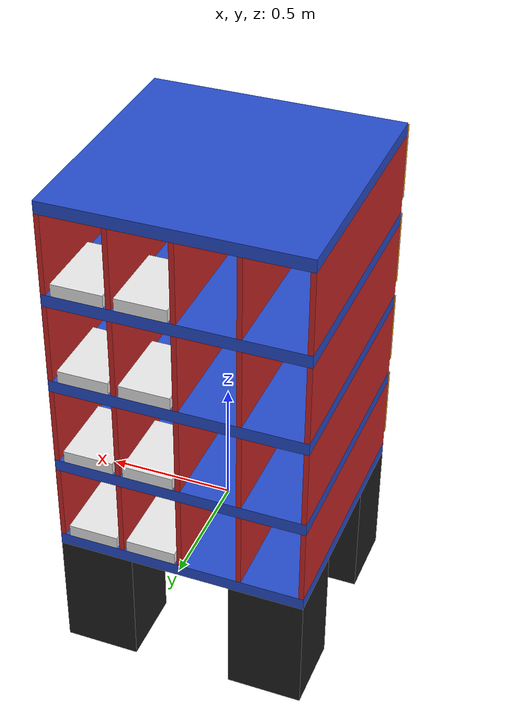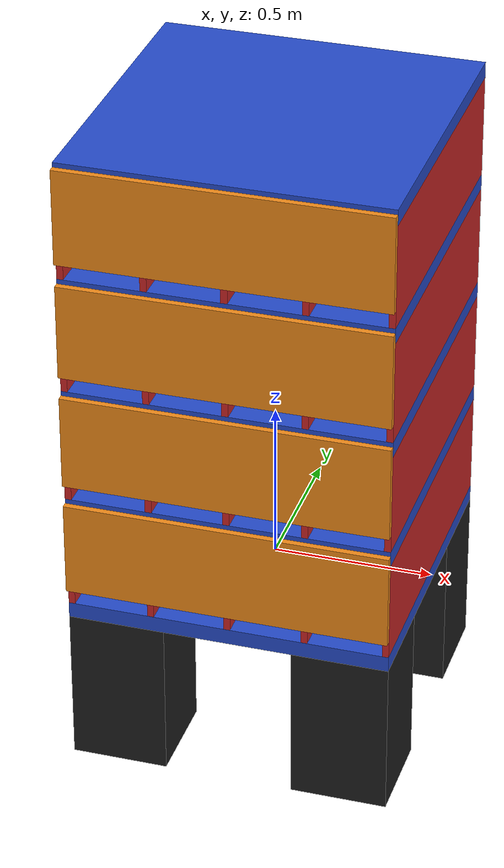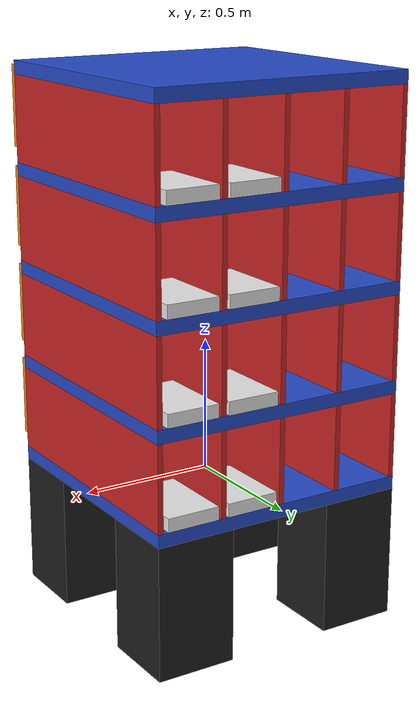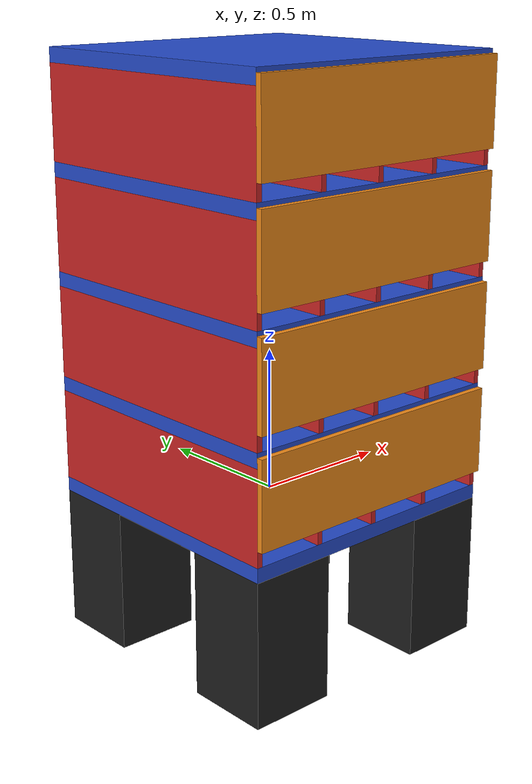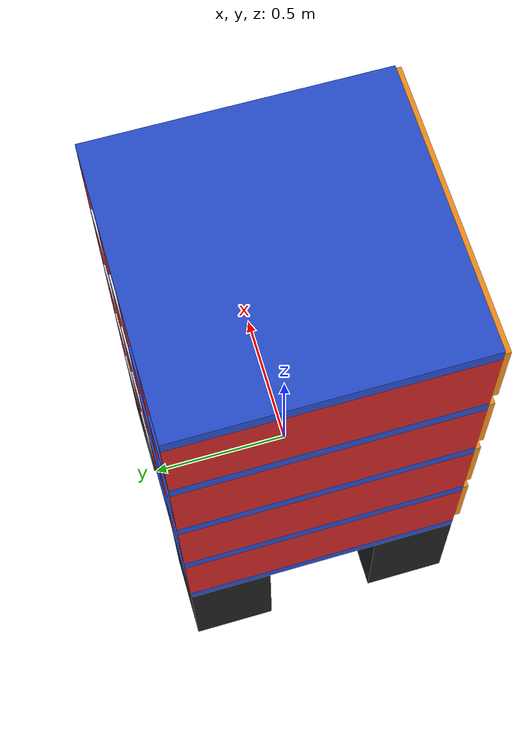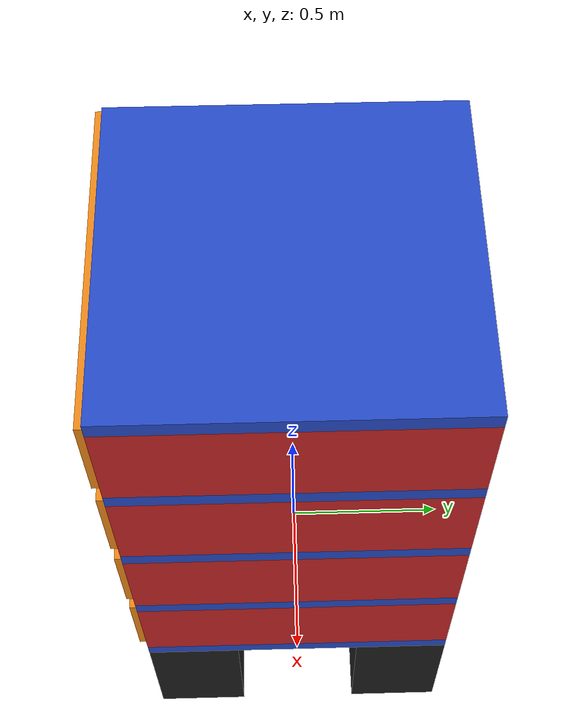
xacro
<?xml version="1.0"?>
<robot name="shelf" xmlns:xacro="http://ros.org/wiki/xacro">

	<xacro:include filename="$(find project)/urdf/common_properties.xacro"/>

	<xacro:macro name="visual1" params="length radius color">
                <visual>
                        <geometry>
                                <cylinder length="${length}" radius="${radius}"/>
                        </geometry>
                        <material name="${color}"/>
                </visual>
                <collision>
                        <geometry>
                                <cylinder length="${length}" radius="${radius}"/>
                        </geometry>
                </collision>
        </xacro:macro>

        <xacro:macro name="visual2" params="length width height color">
                <visual>
                        <geometry>
                                <box size="${length} ${width} ${height}"/>
                        </geometry>
                        <material name="${color}"/>
                </visual>
                <collision>
                        <geometry>
                                <box size="${length} ${width} ${height}"/>
                        </geometry>
                </collision>
        </xacro:macro>

        <xacro:macro name="inertial_" params="mass">
                <inertial>
                        <mass value="${mass}"/>
                        <inertia ixx="1.0" ixy="0.0" ixz="0.0" iyy="1.0" iyz="0.0" izz="1.0" />
                </inertial>
        </xacro:macro>

	<link name="base_footprint"/>
	<joint name="fixed" type="fixed">
		<parent link="base_footprint"/>
		<child link="link1"/>
	</joint>

	<link name="link1">
		<xacro:visual2 length="1.0" width="1" height="0.05" color="blue"/>
		<xacro:inertial_ mass="1"/>
	</link>

	<link name="middle_wall">
		<xacro:visual2 length="0.02" width="1" height="0.32" color="red"/>
		<xacro:inertial_ mass="1"/>
	</link>

	<joint name="middle_wall_joint" type="fixed">
		<parent link="link1"/>
		<child link="middle_wall"/>
		<origin xyz="0 0 0.185"/>
	</joint>

	<link name="right_wall">
		<xacro:visual2 length="0.02" width="1" height="0.32" color="red"/>
		<xacro:inertial_ mass="1"/>
	</link>

	<joint name="right_wall_joint" type="fixed">
		<parent link="link1"/>
		<child link="right_wall"/>
		<origin xyz="0.24 0 0.185"/>
	</joint>

	<link name="right_end">
		<xacro:visual2 length="0.02" width="1" height="0.32" color="red"/>
		<xacro:inertial_ mass="1"/>
	</link>

	<joint name="right_end_joint" type="fixed">
		<parent link="link1"/>
		<child link="right_end"/>
		<origin xyz="0.49 0 0.185"/>
	</joint>

	<link name="left_wall">
		<xacro:visual2 length="0.02" width="1" height="0.32" color="red"/>
		<xacro:inertial_ mass="1"/>
	</link>

	<joint name="left_wall_joint" type="fixed">
		<parent link="link1"/>
		<child link="left_wall"/>
		<origin xyz="-0.24 0 0.185"/>
	</joint>

	<link name="left_end">
		<xacro:visual2 length="0.02" width="1" height="0.32" color="red"/>
		<xacro:inertial_ mass="1"/>
	</link>

	<joint name="left_end_joint" type="fixed">
		<parent link="link1"/>
		<child link="left_end"/>
		<origin xyz="-0.49 0 0.185"/>
	</joint>

	<link name="front_right_leg">
		<xacro:visual2 length="0.3" width="0.3" height="0.5" color="black"/>
		<xacro:inertial_ mass="5"/>
	</link>

	<joint name="front_right_leg_joint" type="fixed">
		<parent link="link1"/>
		<child link="front_right_leg"/>
		<origin xyz="0.35 0.35 -0.275"/>
	</joint>

	<link name="back_right_leg">
		<xacro:visual2 length="0.3" width="0.3" height="0.5" color="black"/>
		<xacro:inertial_ mass="5"/>
	</link>

	<joint name="back_right_leg_joint" type="fixed">
		<parent link="link1"/>
		<child link="back_right_leg"/>
		<origin xyz="0.35 -0.35 -0.275"/>
	</joint>

	<link name="front_left_leg">
		<xacro:visual2 length="0.3" width="0.3" height="0.5" color="black"/>
		<xacro:inertial_ mass="5"/>
	</link>

	<joint name="front_left_leg_joint" type="fixed">
		<parent link="link1"/>
		<child link="front_left_leg"/>
		<origin xyz="-0.35 0.35 -0.275"/>
	</joint>

	<link name="back_left_leg">
		<xacro:visual2 length="0.3" width="0.3" height="0.5" color="black"/>
		<xacro:inertial_ mass="5"/>
	</link>

	<joint name="back_left_leg_joint" type="fixed">
		<parent link="link1"/>
		<child link="back_left_leg"/>
		<origin xyz="-0.35 -0.35 -0.275"/>
	</joint>

	<link name="first_floor">
		<xacro:visual2 length="1" width="1" height="0.05" color="blue"/>
		<xacro:inertial_ mass="1"/>
	</link>

	<joint name="first_floor_joint" type="fixed">
		<parent link="middle_wall"/>
		<child link="first_floor"/>
		<origin xyz="0 0 0.185"/>
	</joint>

	<link name="first_cover">
		<xacro:visual2 length="1" width="0.02" height="0.3" color="orange"/>
		<xacro:inertial_ mass="1"/>
	</link>

	<joint name="first_cover_joint" type="fixed">
		<parent link="first_floor"/>
		<child link="first_cover"/>
		<origin xyz="0 -0.51 -0.14"/>
	</joint>

	<link name="first_middle">
		<xacro:visual2 length="0.02" width="1" height="0.32" color="red"/>
		<xacro:inertial_ mass="1"/>
	</link>

	<joint name="first_middle_joint" type="fixed">
		<parent link="first_floor"/>
		<child link="first_middle"/>
		<origin xyz="0 0 0.185"/>
	</joint>

	<link name="first_right">
		<xacro:visual2 length="0.02" width="1" height="0.32" color="red"/>
		<xacro:inertial_ mass="1"/>
	</link>

	<joint name="first_right_joint" type="fixed">
		<parent link="first_floor"/>
		<child link="first_right"/>
		<origin xyz="0.24 0 0.185"/>
	</joint>

	<link name="first_right_end">
		<xacro:visual2 length="0.02" width="1" height="0.32" color="red"/>
		<xacro:inertial_ mass="1"/>
	</link>

	<joint name="frist_right_end_joint" type="fixed">
		<parent link="first_floor"/>
		<child link="first_right_end"/>
		<origin xyz="0.49 0 0.185"/>
	</joint>

	<link name="first_left">
		<xacro:visual2 length="0.02" width="1" height="0.32" color="red"/>
		<xacro:inertial_ mass="1"/>
	</link>

	<joint name="first_left_joint" type="fixed">
		<parent link="first_floor"/>
		<child link="first_left"/>
		<origin xyz="-0.24 0 0.185"/>
	</joint>

	<link name="first_left_end">
		<xacro:visual2 length="0.02" width="1" height="0.32" color="red"/>
		<xacro:inertial_ mass="1"/>
	</link>

	<joint name="first_left_end_joint" type="fixed">
		<parent link="first_floor"/>
		<child link="first_left_end"/>
		<origin xyz="-0.49 0 0.185"/>
	</joint>

	<link name="second_floor">
		<xacro:visual2 length="1.0" width="1" height="0.05" color="blue"/>
		<xacro:inertial_ mass="1"/>
	</link>

	<joint name="second_floor_joint" type="fixed">
		<parent link="first_middle"/>
		<child link="second_floor"/>
		<origin xyz="0 0 0.185"/>
	</joint>

	<link name="second_cover">
		<xacro:visual2 length="1" width="0.02" height="0.3" color="orange"/>
		<xacro:inertial_ mass="1"/>
	</link>

	<joint name="second_cover_joint" type="fixed">
		<parent link="second_floor"/>
		<child link="second_cover"/>
		<origin xyz="0 -0.51 -0.14"/>
	</joint>

	<link name="second_middle">
		<xacro:visual2 length="0.02" width="1" height="0.32" color="red"/>
		<xacro:inertial_ mass="1"/>
	</link>

	<joint name="second_middle_joint" type="fixed">
		<parent link="second_floor"/>
		<child link="second_middle"/>
		<origin xyz="0 0 0.185"/>
	</joint>

	<link name="second_right">
		<xacro:visual2 length="0.02" width="1" height="0.32" color="red"/>
		<xacro:inertial_ mass="1"/>
	</link>

	<joint name="second_right_joint" type="fixed">
		<parent link="second_floor"/>
		<child link="second_right"/>
		<origin xyz="0.24 0 0.185"/>
	</joint>

	<link name="second_right_end">
		<xacro:visual2 length="0.02" width="1" height="0.32" color="red"/>
		<xacro:inertial_ mass="1"/>
	</link>

	<joint name="second_right_end_joint" type="fixed">
		<parent link="second_floor"/>
		<child link="second_right_end"/>
		<origin xyz="0.49 0 0.185"/>
	</joint>

	<link name="second_left">
		<xacro:visual2 length="0.02" width="1" height="0.32" color="red"/>
		<xacro:inertial_ mass="1"/>
	</link>

	<joint name="second_left_joint" type="fixed">
		<parent link="second_floor"/>
		<child link="second_left"/>
		<origin xyz="-0.24 0 0.185"/>
	</joint>

	<link name="second_left_end">
		<xacro:visual2 length="0.02" width="1" height="0.32" color="red"/>
		<xacro:inertial_ mass="1"/>
	</link>

	<joint name="second_left_end_joint" type="fixed">
		<parent link="second_floor"/>
		<child link="second_left_end"/>
		<origin xyz="-0.49 0 0.185"/>
	</joint>

	<link name="third_floor">
		<xacro:visual2 length="1.0" width="1" height="0.05" color="blue"/>
		<xacro:inertial_ mass="1"/>
	</link>

	<joint name="third_floor_joint" type="fixed">
		<parent link="second_middle"/>
		<child link="third_floor"/>
		<origin xyz="0 0 0.185"/>
	</joint>

	<link name="third_cover">
		<xacro:visual2 length="1" width="0.02" height="0.3" color="orange"/>
		<xacro:inertial_ mass="1"/>
	</link>

	<joint name="third_cover_joint" type="fixed">
		<parent link="third_floor"/>
		<child link="third_cover"/>
		<origin xyz="0 -0.51 -0.14"/>
	</joint>

	<link name="third_middle">
		<xacro:visual2 length="0.02" width="1" height="0.32" color="red"/>
		<xacro:inertial_ mass="1"/>
	</link>

	<joint name="third_middle_joint" type="fixed">
		<parent link="third_floor"/>
		<child link="third_middle"/>
		<origin xyz="0 0 0.185"/>
	</joint>

	<link name="third_right">
		<xacro:visual2 length="0.02" width="1" height="0.32" color="red"/>
		<xacro:inertial_ mass="1"/>
	</link>

	<joint name="third_right_joint" type="fixed">
		<parent link="third_floor"/>
		<child link="third_right"/>
		<origin xyz="0.24 0 0.185"/>
	</joint>

	<link name="third_right_end">
		<xacro:visual2 length="0.02" width="1" height="0.32" color="red"/>
		<xacro:inertial_ mass="1"/>
	</link>

	<joint name="third_right_end_joint" type="fixed">
		<parent link="third_floor"/>
		<child link="third_right_end"/>
		<origin xyz="0.49 0 0.185"/>
	</joint>

	<link name="third_left">
		<xacro:visual2 length="0.02" width="1" height="0.32" color="red"/>
		<xacro:inertial_ mass="1"/>
	</link>

	<joint name="third_left_joint" type="fixed">
		<parent link="third_floor"/>
		<child link="third_left"/>
		<origin xyz="-0.24 0 0.185"/>
	</joint>

	<link name="third_left_end">
		<xacro:visual2 length="0.02" width="1" height="0.32" color="red"/>
		<xacro:inertial_ mass="1"/>
	</link>

	<joint name="third_left_end_joint" type="fixed">
		<parent link="third_floor"/>
		<child link="third_left_end"/>
		<origin xyz="-0.49 0 0.185"/>
	</joint>

	<link name="forth_floor">
		<xacro:visual2 length="1.0" width="1" height="0.05" color="blue"/>
		<xacro:inertial_ mass="1"/>
	</link>

	<joint name="forth_floor_joint" type="fixed">
		<parent link="third_middle"/>
		<child link="forth_floor"/>
		<origin xyz="0 0 0.185"/>
	</joint>

	<link name="forth_cover">
		<xacro:visual2 length="1" width="0.02" height="0.3" color="orange"/>
		<xacro:inertial_ mass="1"/>
	</link>

	<joint name="forth_cover_joint" type="fixed">
		<parent link="forth_floor"/>
		<child link="forth_cover"/>
		<origin xyz="0 -0.51 -0.14"/>
	</joint>

	<link name="black_XL">
		<xacro:visual2 length="0.3" width="0.2" height="0.05" color="white"/>
		<xacro:inertial_ mass="1"/>
	</link>

	<joint name="black_XL_joint" type="prismatic">
		<parent link="link1"/>
		<child link="black_XL"/>
		<origin xyz="0.36 0.35 0.05" rpy="0 0 ${pi/2}"/>
		<limit effort="1000.0" lower="-0.3" upper="0" velocity="0.5"/>
	</joint>

	<link name="black_L">
		<xacro:visual2 length="0.3" width="0.2" height="0.05" color="white"/>
		<xacro:inertial_ mass="1"/>
	</link>

	<joint name="black_L_joint" type="prismatic">
		<parent link="first_floor"/>
		<child link="black_L"/>
		<origin xyz="0.36 0.35 0.05" rpy="0 0 ${pi/2}"/>
		<limit effort="1000.0" lower="-0.3" upper="0" velocity="0.5"/>
	</joint>

	<link name="black_M">
		<xacro:visual2 length="0.3" width="0.2" height="0.05" color="white"/>
		<xacro:inertial_ mass="1"/>
	</link>

	<joint name="black_M_joint" type="prismatic">
		<parent link="second_floor"/>
		<child link="black_M"/>
		<origin xyz="0.36 0.35 0.05" rpy="0 0 ${pi/2}"/>
		<limit effort="1000.0" lower="-0.3" upper="0" velocity="0.5"/>
	</joint>

	<link name="black_S">
		<xacro:visual2 length="0.3" width="0.2" height="0.05" color="white"/>
		<xacro:inertial_ mass="1"/>
	</link>

	<joint name="black_S_joint" type="prismatic">
		<parent link="third_floor"/>
		<child link="black_S"/>
		<origin xyz="0.36 0.35 0.05" rpy="0 0 ${pi/2}"/>
		<limit effort="1000.0" lower="-0.3" upper="0" velocity="0.5"/>
	</joint>

	<link name="white_XL">
		<xacro:visual2 length="0.3" width="0.2" height="0.05" color="white"/>
		<xacro:inertial_ mass="1"/>
	</link>

	<joint name="white_XL_joint" type="prismatic">
		<parent link="link1"/>
		<child link="white_XL"/>
		<origin xyz="0.12 0.35 0.05" rpy="0 0 ${pi/2}"/>
		<limit effort="1000.0" lower="-0.3" upper="0" velocity="0.5"/>
	</joint>

	<link name="white_L">
		<xacro:visual2 length="0.3" width="0.2" height="0.05" color="white"/>
		<xacro:inertial_ mass="1"/>
	</link>

	<joint name="white_L_joint" type="prismatic">
		<parent link="first_floor"/>
		<child link="white_L"/>
		<origin xyz="0.12 0.35 0.05" rpy="0 0 ${pi/2}"/>
		<limit effort="1000.0" lower="-0.3" upper="0" velocity="0.5"/>
	</joint>

	<link name="white_M">
		<xacro:visual2 length="0.3" width="0.2" height="0.05" color="white"/>
		<xacro:inertial_ mass="1"/>
	</link>

	<joint name="white_M_joint" type="prismatic">
		<parent link="second_floor"/>
		<child link="white_M"/>
		<origin xyz="0.12 0.35 0.05" rpy="0 0 ${pi/2}"/>
		<limit effort="1000.0" lower="-0.3" upper="0" velocity="0.5"/>
	</joint>

	<link name="white_S">
		<xacro:visual2 length="0.3" width="0.2" height="0.05" color="white"/>
		<xacro:inertial_ mass="1"/>
	</link>

	<joint name="white_S_joint" type="prismatic">
		<parent link="third_floor"/>
		<child link="white_S"/>
		<origin xyz="0.12 0.35 0.05" rpy="0 0 ${pi/2}"/>
		<limit effort="1000.0" lower="-0.3" upper="0" velocity="0.5"/>
	</joint>

</robot>
